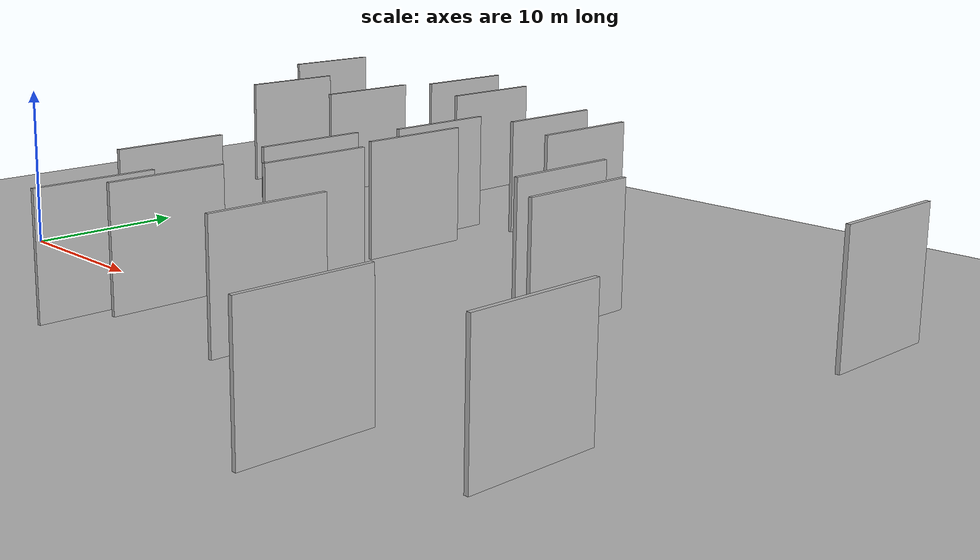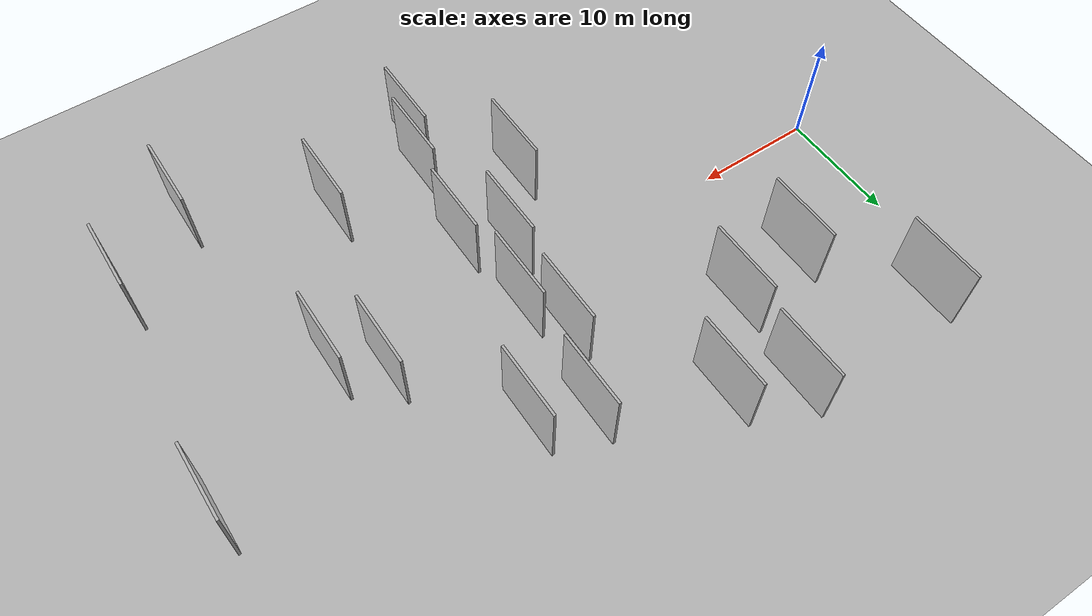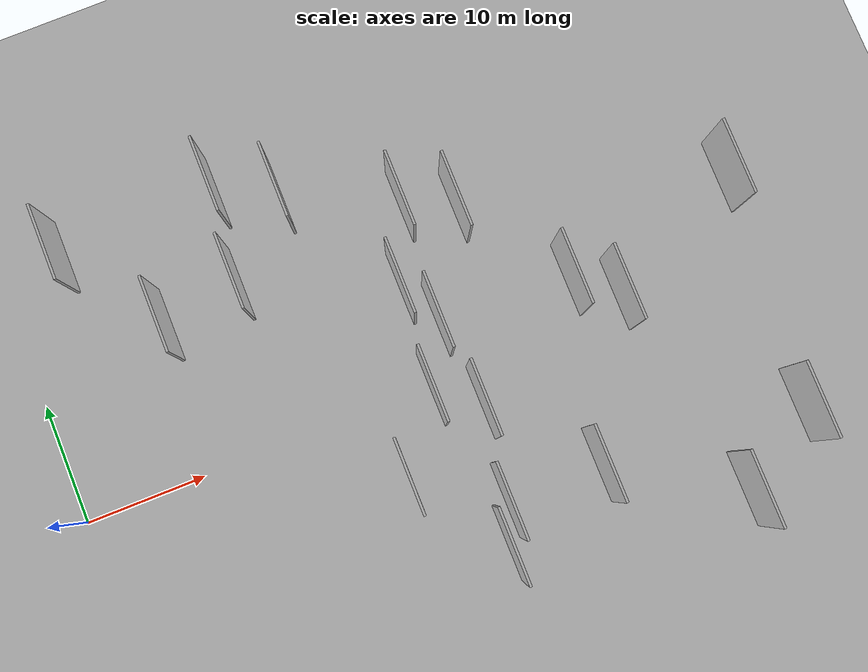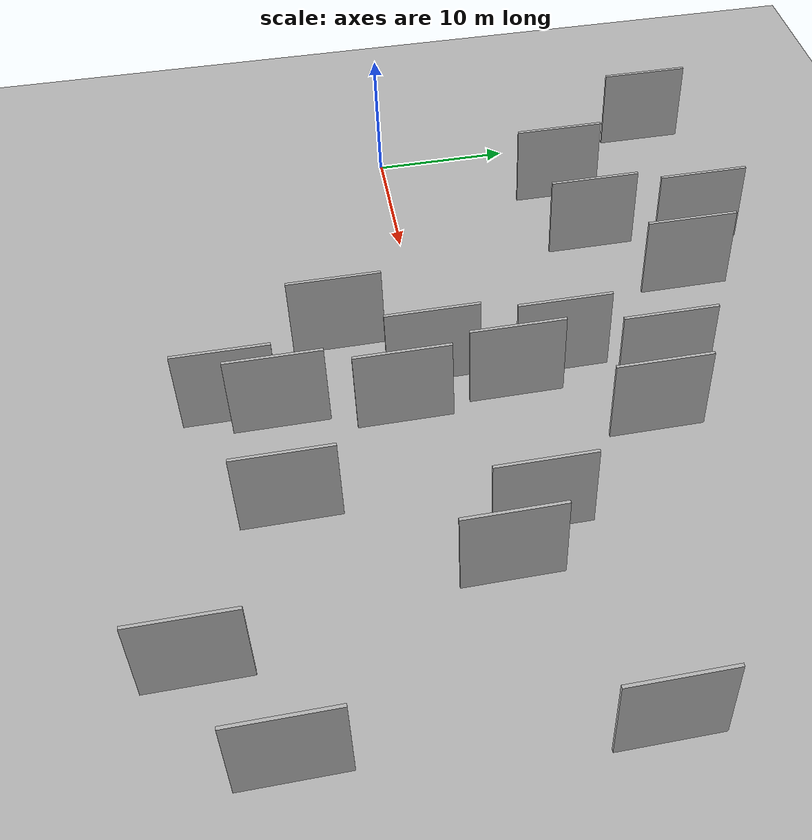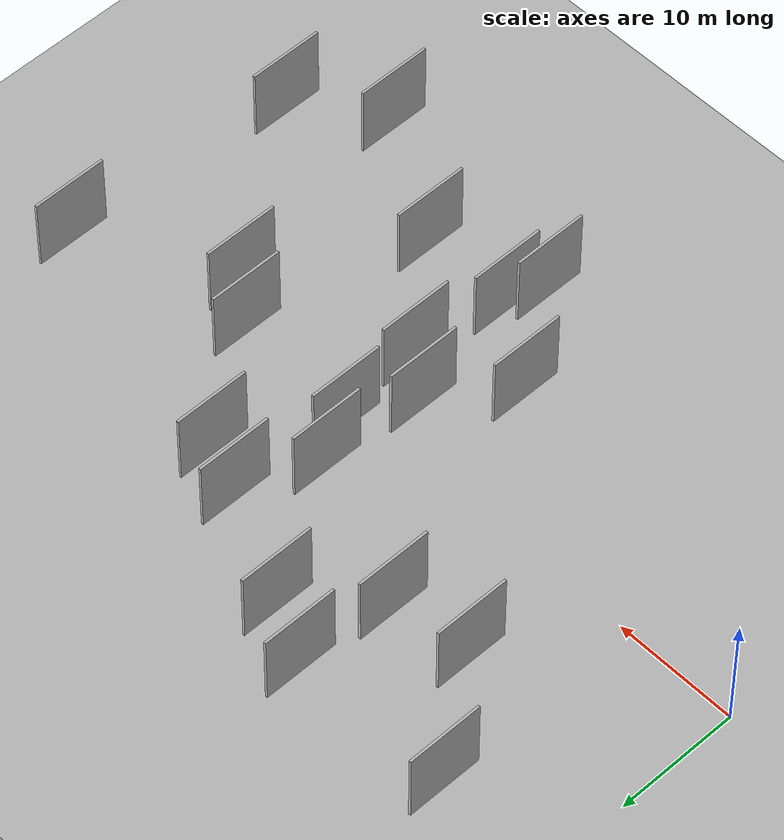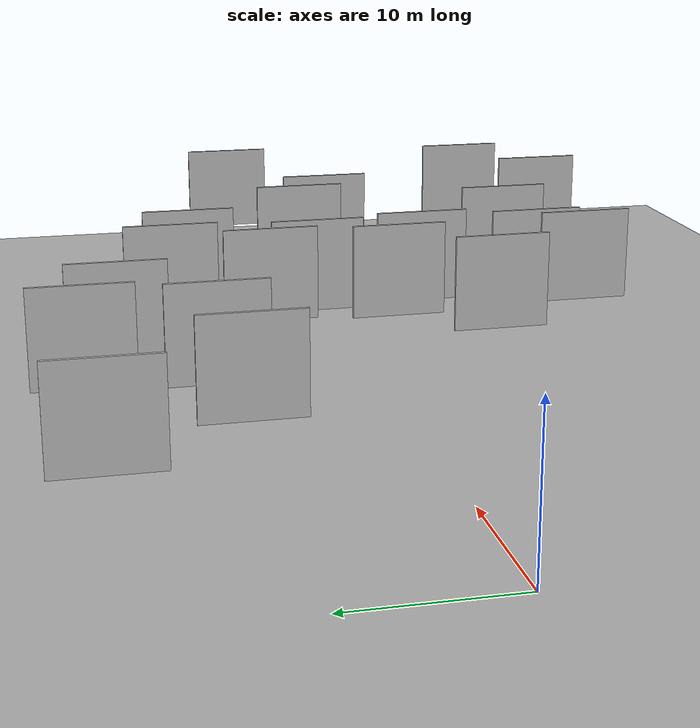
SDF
<?xml version="1.0" encoding="utf-8"?>

<sdf version="1.6">

   <world name="default">

      <gui fullscreen="0">

         <camera name="user_camera">

            <pose>-15 0 4.57585 0 0 0</pose>

            <view_controller>orbit</view_controller>

         </camera>

      </gui>

      <scene>

         <sky>

           <clouds>

             <speed>12</speed>

           </clouds>

         </sky>

         <ambient>0.4 0.4 0.4 1</ambient>

         <background>0.7 0.7 0.7 1</background>

         <shadows>1</shadows>

      </scene>

      <gravity>0 0 -9.8066</gravity>

      <magnetic_field>6e-06 2.3e-05 -4.2e-05</magnetic_field>

      <physics default="0" name="default_physics" type="ode">

         <ode>

            <solver>

               <type>quick</type>

               <iters>10</iters>

               <sor>1.0</sor>

               <use_dynamic_moi_rescaling>0</use_dynamic_moi_rescaling>

            </solver>

            <constraints>

               <cfm>0</cfm>

               <erp>0.2</erp>

               <contact_max_correcting_vel>100</contact_max_correcting_vel>

               <contact_surface_layer>0.001</contact_surface_layer>

            </constraints>

         </ode>

         <max_step_size>0.004</max_step_size>

         <real_time_factor>1</real_time_factor>

         <real_time_update_rate>250</real_time_update_rate>

      </physics>

      <light name="sun" type="directional">

         <cast_shadows>1</cast_shadows>

         <pose>0 0 10 0 0 0</pose>

         <diffuse>0.8 0.8 0.8 1</diffuse>

         <specular>0.2 0.2 0.2 1</specular>

         <attenuation>

            <range>1000</range>

            <constant>0.9</constant>

            <linear>0.01</linear>

            <quadratic>0.001</quadratic>

         </attenuation>

         <direction>-0.5 0.1 -0.9</direction>

      </light>

      <include>

         <name>ground_plane_1</name>

         <uri>model://HANNAS_ground_plane</uri>

         <pose>0 0 0  0 0 0</pose>

      </include>

      <include>

         <name>ground_plane_2</name>

         <uri>model://HANNAS_ground_plane</uri>

         <pose>100 0 0  0 0 0</pose>

      </include>

      <model name="HANNAS_wall_1">

         <static>1</static>

         <pose frame="">48.6045 -16.3556 5.0 0.000000 0.000000 1.570796</pose>

         <link name="link">

            <pose frame="">0 0 3.00 0 0 0</pose>

            <collision name="collision">

               <geometry>

                  <box>

                     <size>6.00 0.2 6.00</size>

                  </box>

               </geometry>

               <max_contacts>10</max_contacts>

               <surface>

                  <contact>

                     <ode/>

                  </contact>

                  <bounce/>

                  <friction>

                     <torsional>

                        <ode/>

                     </torsional>

                     <ode/>

                  </friction>

               </surface>

            </collision>

            <visual name="visual">

               <cast_shadows>0</cast_shadows>

               <geometry>

                  <box>

                     <size>6.00 0.2 6.00</size>

                  </box>

               </geometry>

               <material>

                  <script>

                     <uri>model://HANNAS_wall/materials/scripts</uri>

                     <uri>model://HANNAS_wall/materials/textures</uri>

                     <name>vrc/HANNAS_wall</name>

                  </script>

               </material>

            </visual>

            <self_collide>0</self_collide>

            <enable_wind>0</enable_wind>

            <kinematic>0</kinematic>

         </link>

      </model>

      <model name="HANNAS_wall_2">

         <static>1</static>

         <pose frame="">6.7649 19.5103 5.0 0.000000 0.000000 1.570796</pose>

         <link name="link">

            <pose frame="">0 0 3.00 0 0 0</pose>

            <collision name="collision">

               <geometry>

                  <box>

                     <size>6.00 0.2 6.00</size>

                  </box>

               </geometry>

               <max_contacts>10</max_contacts>

               <surface>

                  <contact>

                     <ode/>

                  </contact>

                  <bounce/>

                  <friction>

                     <torsional>

                        <ode/>

                     </torsional>

                     <ode/>

                  </friction>

               </surface>

            </collision>

            <visual name="visual">

               <cast_shadows>0</cast_shadows>

               <geometry>

                  <box>

                     <size>6.00 0.2 6.00</size>

                  </box>

               </geometry>

               <material>

                  <script>

                     <uri>model://HANNAS_wall/materials/scripts</uri>

                     <uri>model://HANNAS_wall/materials/textures</uri>

                     <name>vrc/HANNAS_wall</name>

                  </script>

               </material>

            </visual>

            <self_collide>0</self_collide>

            <enable_wind>0</enable_wind>

            <kinematic>0</kinematic>

         </link>

      </model>

      <model name="HANNAS_wall_3">

         <static>1</static>

         <pose frame="">18.6656 12.4914 5.0 0.000000 0.000000 1.570796</pose>

         <link name="link">

            <pose frame="">0 0 3.00 0 0 0</pose>

            <collision name="collision">

               <geometry>

                  <box>

                     <size>6.00 0.2 6.00</size>

                  </box>

               </geometry>

               <max_contacts>10</max_contacts>

               <surface>

                  <contact>

                     <ode/>

                  </contact>

                  <bounce/>

                  <friction>

                     <torsional>

                        <ode/>

                     </torsional>

                     <ode/>

                  </friction>

               </surface>

            </collision>

            <visual name="visual">

               <cast_shadows>0</cast_shadows>

               <geometry>

                  <box>

                     <size>6.00 0.2 6.00</size>

                  </box>

               </geometry>

               <material>

                  <script>

                     <uri>model://HANNAS_wall/materials/scripts</uri>

                     <uri>model://HANNAS_wall/materials/textures</uri>

                     <name>vrc/HANNAS_wall</name>

                  </script>

               </material>

            </visual>

            <self_collide>0</self_collide>

            <enable_wind>0</enable_wind>

            <kinematic>0</kinematic>

         </link>

      </model>

      <model name="HANNAS_wall_4">

         <static>1</static>

         <pose frame="">12.4944 11.5218 5.0 0.000000 0.000000 1.570796</pose>

         <link name="link">

            <pose frame="">0 0 3.00 0 0 0</pose>

            <collision name="collision">

               <geometry>

                  <box>

                     <size>6.00 0.2 6.00</size>

                  </box>

               </geometry>

               <max_contacts>10</max_contacts>

               <surface>

                  <contact>

                     <ode/>

                  </contact>

                  <bounce/>

                  <friction>

                     <torsional>

                        <ode/>

                     </torsional>

                     <ode/>

                  </friction>

               </surface>

            </collision>

            <visual name="visual">

               <cast_shadows>0</cast_shadows>

               <geometry>

                  <box>

                     <size>6.00 0.2 6.00</size>

                  </box>

               </geometry>

               <material>

                  <script>

                     <uri>model://HANNAS_wall/materials/scripts</uri>

                     <uri>model://HANNAS_wall/materials/textures</uri>

                     <name>vrc/HANNAS_wall</name>

                  </script>

               </material>

            </visual>

            <self_collide>0</self_collide>

            <enable_wind>0</enable_wind>

            <kinematic>0</kinematic>

         </link>

      </model>

      <model name="HANNAS_wall_5">

         <static>1</static>

         <pose frame="">38.9954 -10.5758 5.0 0.000000 0.000000 1.570796</pose>

         <link name="link">

            <pose frame="">0 0 3.00 0 0 0</pose>

            <collision name="collision">

               <geometry>

                  <box>

                     <size>6.00 0.2 6.00</size>

                  </box>

               </geometry>

               <max_contacts>10</max_contacts>

               <surface>

                  <contact>

                     <ode/>

                  </contact>

                  <bounce/>

                  <friction>

                     <torsional>

                        <ode/>

                     </torsional>

                     <ode/>

                  </friction>

               </surface>

            </collision>

            <visual name="visual">

               <cast_shadows>0</cast_shadows>

               <geometry>

                  <box>

                     <size>6.00 0.2 6.00</size>

                  </box>

               </geometry>

               <material>

                  <script>

                     <uri>model://HANNAS_wall/materials/scripts</uri>

                     <uri>model://HANNAS_wall/materials/textures</uri>

                     <name>vrc/HANNAS_wall</name>

                  </script>

               </material>

            </visual>

            <self_collide>0</self_collide>

            <enable_wind>0</enable_wind>

            <kinematic>0</kinematic>

         </link>

      </model>

      <model name="HANNAS_wall_6">

         <static>1</static>

         <pose frame="">30.4145 -13.4627 5.0 0.000000 0.000000 1.570796</pose>

         <link name="link">

            <pose frame="">0 0 3.00 0 0 0</pose>

            <collision name="collision">

               <geometry>

                  <box>

                     <size>6.00 0.2 6.00</size>

                  </box>

               </geometry>

               <max_contacts>10</max_contacts>

               <surface>

                  <contact>

                     <ode/>

                  </contact>

                  <bounce/>

                  <friction>

                     <torsional>

                        <ode/>

                     </torsional>

                     <ode/>

                  </friction>

               </surface>

            </collision>

            <visual name="visual">

               <cast_shadows>0</cast_shadows>

               <geometry>

                  <box>

                     <size>6.00 0.2 6.00</size>

                  </box>

               </geometry>

               <material>

                  <script>

                     <uri>model://HANNAS_wall/materials/scripts</uri>

                     <uri>model://HANNAS_wall/materials/textures</uri>

                     <name>vrc/HANNAS_wall</name>

                  </script>

               </material>

            </visual>

            <self_collide>0</self_collide>

            <enable_wind>0</enable_wind>

            <kinematic>0</kinematic>

         </link>

      </model>

      <model name="HANNAS_wall_7">

         <static>1</static>

         <pose frame="">32.5522 -2.9268 5.0 0.000000 0.000000 1.570796</pose>

         <link name="link">

            <pose frame="">0 0 3.00 0 0 0</pose>

            <collision name="collision">

               <geometry>

                  <box>

                     <size>6.00 0.2 6.00</size>

                  </box>

               </geometry>

               <max_contacts>10</max_contacts>

               <surface>

                  <contact>

                     <ode/>

                  </contact>

                  <bounce/>

                  <friction>

                     <torsional>

                        <ode/>

                     </torsional>

                     <ode/>

                  </friction>

               </surface>

            </collision>

            <visual name="visual">

               <cast_shadows>0</cast_shadows>

               <geometry>

                  <box>

                     <size>6.00 0.2 6.00</size>

                  </box>

               </geometry>

               <material>

                  <script>

                     <uri>model://HANNAS_wall/materials/scripts</uri>

                     <uri>model://HANNAS_wall/materials/textures</uri>

                     <name>vrc/HANNAS_wall</name>

                  </script>

               </material>

            </visual>

            <self_collide>0</self_collide>

            <enable_wind>0</enable_wind>

            <kinematic>0</kinematic>

         </link>

      </model>

      <model name="HANNAS_wall_8">

         <static>1</static>

         <pose frame="">24.0452 17.6752 5.0 0.000000 0.000000 1.570796</pose>

         <link name="link">

            <pose frame="">0 0 3.00 0 0 0</pose>

            <collision name="collision">

               <geometry>

                  <box>

                     <size>6.00 0.2 6.00</size>

                  </box>

               </geometry>

               <max_contacts>10</max_contacts>

               <surface>

                  <contact>

                     <ode/>

                  </contact>

                  <bounce/>

                  <friction>

                     <torsional>

                        <ode/>

                     </torsional>

                     <ode/>

                  </friction>

               </surface>

            </collision>

            <visual name="visual">

               <cast_shadows>0</cast_shadows>

               <geometry>

                  <box>

                     <size>6.00 0.2 6.00</size>

                  </box>

               </geometry>

               <material>

                  <script>

                     <uri>model://HANNAS_wall/materials/scripts</uri>

                     <uri>model://HANNAS_wall/materials/textures</uri>

                     <name>vrc/HANNAS_wall</name>

                  </script>

               </material>

            </visual>

            <self_collide>0</self_collide>

            <enable_wind>0</enable_wind>

            <kinematic>0</kinematic>

         </link>

      </model>

      <model name="HANNAS_wall_9">

         <static>1</static>

         <pose frame="">19.4940 19.9250 5.0 0.000000 0.000000 1.570796</pose>

         <link name="link">

            <pose frame="">0 0 3.00 0 0 0</pose>

            <collision name="collision">

               <geometry>

                  <box>

                     <size>6.00 0.2 6.00</size>

                  </box>

               </geometry>

               <max_contacts>10</max_contacts>

               <surface>

                  <contact>

                     <ode/>

                  </contact>

                  <bounce/>

                  <friction>

                     <torsional>

                        <ode/>

                     </torsional>

                     <ode/>

                  </friction>

               </surface>

            </collision>

            <visual name="visual">

               <cast_shadows>0</cast_shadows>

               <geometry>

                  <box>

                     <size>6.00 0.2 6.00</size>

                  </box>

               </geometry>

               <material>

                  <script>

                     <uri>model://HANNAS_wall/materials/scripts</uri>

                     <uri>model://HANNAS_wall/materials/textures</uri>

                     <name>vrc/HANNAS_wall</name>

                  </script>

               </material>

            </visual>

            <self_collide>0</self_collide>

            <enable_wind>0</enable_wind>

            <kinematic>0</kinematic>

         </link>

      </model>

      <model name="HANNAS_wall_10">

         <static>1</static>

         <pose frame="">42.2725 3.4707 5.0 0.000000 0.000000 1.570796</pose>

         <link name="link">

            <pose frame="">0 0 3.00 0 0 0</pose>

            <collision name="collision">

               <geometry>

                  <box>

                     <size>6.00 0.2 6.00</size>

                  </box>

               </geometry>

               <max_contacts>10</max_contacts>

               <surface>

                  <contact>

                     <ode/>

                  </contact>

                  <bounce/>

                  <friction>

                     <torsional>

                        <ode/>

                     </torsional>

                     <ode/>

                  </friction>

               </surface>

            </collision>

            <visual name="visual">

               <cast_shadows>0</cast_shadows>

               <geometry>

                  <box>

                     <size>6.00 0.2 6.00</size>

                  </box>

               </geometry>

               <material>

                  <script>

                     <uri>model://HANNAS_wall/materials/scripts</uri>

                     <uri>model://HANNAS_wall/materials/textures</uri>

                     <name>vrc/HANNAS_wall</name>

                  </script>

               </material>

            </visual>

            <self_collide>0</self_collide>

            <enable_wind>0</enable_wind>

            <kinematic>0</kinematic>

         </link>

      </model>

      <model name="HANNAS_wall_11">

         <static>1</static>

         <pose frame="">29.3836 -0.5814 5.0 0.000000 0.000000 1.570796</pose>

         <link name="link">

            <pose frame="">0 0 3.00 0 0 0</pose>

            <collision name="collision">

               <geometry>

                  <box>

                     <size>6.00 0.2 6.00</size>

                  </box>

               </geometry>

               <max_contacts>10</max_contacts>

               <surface>

                  <contact>

                     <ode/>

                  </contact>

                  <bounce/>

                  <friction>

                     <torsional>

                        <ode/>

                     </torsional>

                     <ode/>

                  </friction>

               </surface>

            </collision>

            <visual name="visual">

               <cast_shadows>0</cast_shadows>

               <geometry>

                  <box>

                     <size>6.00 0.2 6.00</size>

                  </box>

               </geometry>

               <material>

                  <script>

                     <uri>model://HANNAS_wall/materials/scripts</uri>

                     <uri>model://HANNAS_wall/materials/textures</uri>

                     <name>vrc/HANNAS_wall</name>

                  </script>

               </material>

            </visual>

            <self_collide>0</self_collide>

            <enable_wind>0</enable_wind>

            <kinematic>0</kinematic>

         </link>

      </model>

      <model name="HANNAS_wall_12">

         <static>1</static>

         <pose frame="">36.2868 12.0492 5.0 0.000000 0.000000 1.570796</pose>

         <link name="link">

            <pose frame="">0 0 3.00 0 0 0</pose>

            <collision name="collision">

               <geometry>

                  <box>

                     <size>6.00 0.2 6.00</size>

                  </box>

               </geometry>

               <max_contacts>10</max_contacts>

               <surface>

                  <contact>

                     <ode/>

                  </contact>

                  <bounce/>

                  <friction>

                     <torsional>

                        <ode/>

                     </torsional>

                     <ode/>

                  </friction>

               </surface>

            </collision>

            <visual name="visual">

               <cast_shadows>0</cast_shadows>

               <geometry>

                  <box>

                     <size>6.00 0.2 6.00</size>

                  </box>

               </geometry>

               <material>

                  <script>

                     <uri>model://HANNAS_wall/materials/scripts</uri>

                     <uri>model://HANNAS_wall/materials/textures</uri>

                     <name>vrc/HANNAS_wall</name>

                  </script>

               </material>

            </visual>

            <self_collide>0</self_collide>

            <enable_wind>0</enable_wind>

            <kinematic>0</kinematic>

         </link>

      </model>

      <model name="HANNAS_wall_13">

         <static>1</static>

         <pose frame="">31.7411 4.2411 5.0 0.000000 0.000000 1.570796</pose>

         <link name="link">

            <pose frame="">0 0 3.00 0 0 0</pose>

            <collision name="collision">

               <geometry>

                  <box>

                     <size>6.00 0.2 6.00</size>

                  </box>

               </geometry>

               <max_contacts>10</max_contacts>

               <surface>

                  <contact>

                     <ode/>

                  </contact>

                  <bounce/>

                  <friction>

                     <torsional>

                        <ode/>

                     </torsional>

                     <ode/>

                  </friction>

               </surface>

            </collision>

            <visual name="visual">

               <cast_shadows>0</cast_shadows>

               <geometry>

                  <box>

                     <size>6.00 0.2 6.00</size>

                  </box>

               </geometry>

               <material>

                  <script>

                     <uri>model://HANNAS_wall/materials/scripts</uri>

                     <uri>model://HANNAS_wall/materials/textures</uri>

                     <name>vrc/HANNAS_wall</name>

                  </script>

               </material>

            </visual>

            <self_collide>0</self_collide>

            <enable_wind>0</enable_wind>

            <kinematic>0</kinematic>

         </link>

      </model>

      <model name="HANNAS_wall_14">

         <static>1</static>

         <pose frame="">45.3859 1.0277 5.0 0.000000 0.000000 1.570796</pose>

         <link name="link">

            <pose frame="">0 0 3.00 0 0 0</pose>

            <collision name="collision">

               <geometry>

                  <box>

                     <size>6.00 0.2 6.00</size>

                  </box>

               </geometry>

               <max_contacts>10</max_contacts>

               <surface>

                  <contact>

                     <ode/>

                  </contact>

                  <bounce/>

                  <friction>

                     <torsional>

                        <ode/>

                     </torsional>

                     <ode/>

                  </friction>

               </surface>

            </collision>

            <visual name="visual">

               <cast_shadows>0</cast_shadows>

               <geometry>

                  <box>

                     <size>6.00 0.2 6.00</size>

                  </box>

               </geometry>

               <material>

                  <script>

                     <uri>model://HANNAS_wall/materials/scripts</uri>

                     <uri>model://HANNAS_wall/materials/textures</uri>

                     <name>vrc/HANNAS_wall</name>

                  </script>

               </material>

            </visual>

            <self_collide>0</self_collide>

            <enable_wind>0</enable_wind>

            <kinematic>0</kinematic>

         </link>

      </model>

      <model name="HANNAS_wall_15">

         <static>1</static>

         <pose frame="">30.0718 7.5834 5.0 0.000000 0.000000 1.570796</pose>

         <link name="link">

            <pose frame="">0 0 3.00 0 0 0</pose>

            <collision name="collision">

               <geometry>

                  <box>

                     <size>6.00 0.2 6.00</size>

                  </box>

               </geometry>

               <max_contacts>10</max_contacts>

               <surface>

                  <contact>

                     <ode/>

                  </contact>

                  <bounce/>

                  <friction>

                     <torsional>

                        <ode/>

                     </torsional>

                     <ode/>

                  </friction>

               </surface>

            </collision>

            <visual name="visual">

               <cast_shadows>0</cast_shadows>

               <geometry>

                  <box>

                     <size>6.00 0.2 6.00</size>

                  </box>

               </geometry>

               <material>

                  <script>

                     <uri>model://HANNAS_wall/materials/scripts</uri>

                     <uri>model://HANNAS_wall/materials/textures</uri>

                     <name>vrc/HANNAS_wall</name>

                  </script>

               </material>

            </visual>

            <self_collide>0</self_collide>

            <enable_wind>0</enable_wind>

            <kinematic>0</kinematic>

         </link>

      </model>

      <model name="HANNAS_wall_16">

         <static>1</static>

         <pose frame="">31.4906 -10.4519 5.0 0.000000 0.000000 1.570796</pose>

         <link name="link">

            <pose frame="">0 0 3.00 0 0 0</pose>

            <collision name="collision">

               <geometry>

                  <box>

                     <size>6.00 0.2 6.00</size>

                  </box>

               </geometry>

               <max_contacts>10</max_contacts>

               <surface>

                  <contact>

                     <ode/>

                  </contact>

                  <bounce/>

                  <friction>

                     <torsional>

                        <ode/>

                     </torsional>

                     <ode/>

                  </friction>

               </surface>

            </collision>

            <visual name="visual">

               <cast_shadows>0</cast_shadows>

               <geometry>

                  <box>

                     <size>6.00 0.2 6.00</size>

                  </box>

               </geometry>

               <material>

                  <script>

                     <uri>model://HANNAS_wall/materials/scripts</uri>

                     <uri>model://HANNAS_wall/materials/textures</uri>

                     <name>vrc/HANNAS_wall</name>

                  </script>

               </material>

            </visual>

            <self_collide>0</self_collide>

            <enable_wind>0</enable_wind>

            <kinematic>0</kinematic>

         </link>

      </model>

      <model name="HANNAS_wall_17">

         <static>1</static>

         <pose frame="">54.8873 -12.0025 5.0 0.000000 0.000000 1.570796</pose>

         <link name="link">

            <pose frame="">0 0 3.00 0 0 0</pose>

            <collision name="collision">

               <geometry>

                  <box>

                     <size>6.00 0.2 6.00</size>

                  </box>

               </geometry>

               <max_contacts>10</max_contacts>

               <surface>

                  <contact>

                     <ode/>

                  </contact>

                  <bounce/>

                  <friction>

                     <torsional>

                        <ode/>

                     </torsional>

                     <ode/>

                  </friction>

               </surface>

            </collision>

            <visual name="visual">

               <cast_shadows>0</cast_shadows>

               <geometry>

                  <box>

                     <size>6.00 0.2 6.00</size>

                  </box>

               </geometry>

               <material>

                  <script>

                     <uri>model://HANNAS_wall/materials/scripts</uri>

                     <uri>model://HANNAS_wall/materials/textures</uri>

                     <name>vrc/HANNAS_wall</name>

                  </script>

               </material>

            </visual>

            <self_collide>0</self_collide>

            <enable_wind>0</enable_wind>

            <kinematic>0</kinematic>

         </link>

      </model>

      <model name="HANNAS_wall_18">

         <static>1</static>

         <pose frame="">25.3371 -6.1570 5.0 0.000000 0.000000 1.570796</pose>

         <link name="link">

            <pose frame="">0 0 3.00 0 0 0</pose>

            <collision name="collision">

               <geometry>

                  <box>

                     <size>6.00 0.2 6.00</size>

                  </box>

               </geometry>

               <max_contacts>10</max_contacts>

               <surface>

                  <contact>

                     <ode/>

                  </contact>

                  <bounce/>

                  <friction>

                     <torsional>

                        <ode/>

                     </torsional>

                     <ode/>

                  </friction>

               </surface>

            </collision>

            <visual name="visual">

               <cast_shadows>0</cast_shadows>

               <geometry>

                  <box>

                     <size>6.00 0.2 6.00</size>

                  </box>

               </geometry>

               <material>

                  <script>

                     <uri>model://HANNAS_wall/materials/scripts</uri>

                     <uri>model://HANNAS_wall/materials/textures</uri>

                     <name>vrc/HANNAS_wall</name>

                  </script>

               </material>

            </visual>

            <self_collide>0</self_collide>

            <enable_wind>0</enable_wind>

            <kinematic>0</kinematic>

         </link>

      </model>

      <model name="HANNAS_wall_19">

         <static>1</static>

         <pose frame="">32.4318 13.6198 5.0 0.000000 0.000000 1.570796</pose>

         <link name="link">

            <pose frame="">0 0 3.00 0 0 0</pose>

            <collision name="collision">

               <geometry>

                  <box>

                     <size>6.00 0.2 6.00</size>

                  </box>

               </geometry>

               <max_contacts>10</max_contacts>

               <surface>

                  <contact>

                     <ode/>

                  </contact>

                  <bounce/>

                  <friction>

                     <torsional>

                        <ode/>

                     </torsional>

                     <ode/>

                  </friction>

               </surface>

            </collision>

            <visual name="visual">

               <cast_shadows>0</cast_shadows>

               <geometry>

                  <box>

                     <size>6.00 0.2 6.00</size>

                  </box>

               </geometry>

               <material>

                  <script>

                     <uri>model://HANNAS_wall/materials/scripts</uri>

                     <uri>model://HANNAS_wall/materials/textures</uri>

                     <name>vrc/HANNAS_wall</name>

                  </script>

               </material>

            </visual>

            <self_collide>0</self_collide>

            <enable_wind>0</enable_wind>

            <kinematic>0</kinematic>

         </link>

      </model>

      <model name="HANNAS_wall_20">

         <static>1</static>

         <pose frame="">56.4746 6.6306 5.0 0.000000 0.000000 1.570796</pose>

         <link name="link">

            <pose frame="">0 0 3.00 0 0 0</pose>

            <collision name="collision">

               <geometry>

                  <box>

                     <size>6.00 0.2 6.00</size>

                  </box>

               </geometry>

               <max_contacts>10</max_contacts>

               <surface>

                  <contact>

                     <ode/>

                  </contact>

                  <bounce/>

                  <friction>

                     <torsional>

                        <ode/>

                     </torsional>

                     <ode/>

                  </friction>

               </surface>

            </collision>

            <visual name="visual">

               <cast_shadows>0</cast_shadows>

               <geometry>

                  <box>

                     <size>6.00 0.2 6.00</size>

                  </box>

               </geometry>

               <material>

                  <script>

                     <uri>model://HANNAS_wall/materials/scripts</uri>

                     <uri>model://HANNAS_wall/materials/textures</uri>

                     <name>vrc/HANNAS_wall</name>

                  </script>

               </material>

            </visual>

            <self_collide>0</self_collide>

            <enable_wind>0</enable_wind>

            <kinematic>0</kinematic>

         </link>

      </model>

   </world>

</sdf>

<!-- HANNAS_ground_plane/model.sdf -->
<sdf version="1.4">
<model name="HANNAS_ground_plane">
  <static>true</static>
    <link name="link">
      <collision name="collision">
        <geometry>
          <plane>
            <normal>0 0 1</normal>
            <size>1000 1000</size>
          </plane>
        </geometry>
        <surface>
          <friction>
            <ode>
              <mu>100</mu>
              <mu2>50</mu2>
            </ode>
          </friction>
        </surface>
      </collision>
      <visual name="visual">
        <cast_shadows>false</cast_shadows>
        <geometry>
          <plane>
            <normal>0 0 1</normal>
            <size>1000 1000</size>
          </plane>
        </geometry>
        <material>
          <script>
            <uri>model://HANNAS_ground_plane/materials/scripts/HANNAS_ground_plane.material</uri>
	    <uri>model://HANNAS_ground_plane/materials/textures</uri>
            <name>HANNASGroundPlane/Image</name>
          </script>
        </material>
      </visual>
    </link>
  </model>
</sdf>
